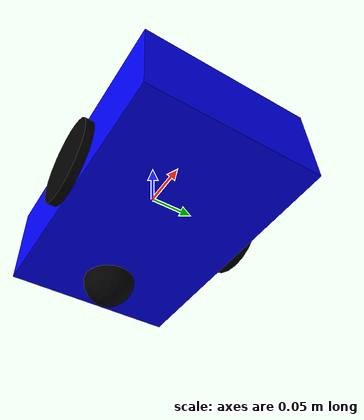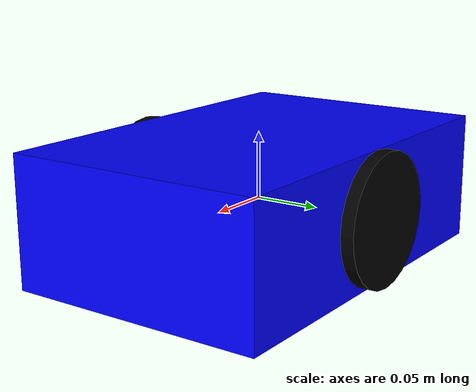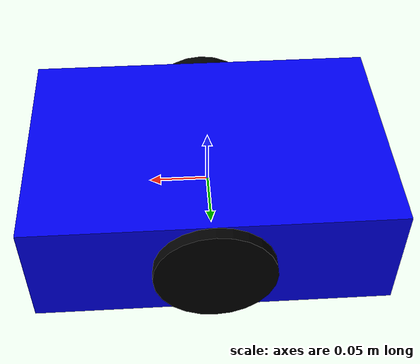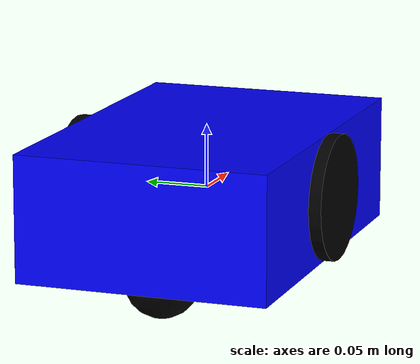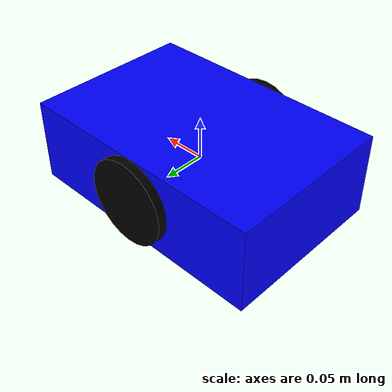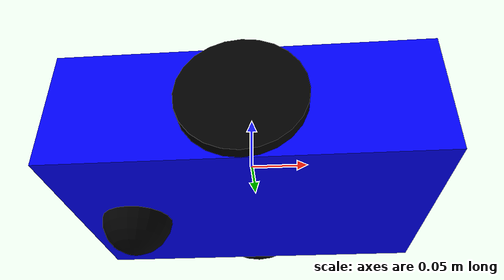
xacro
<?xml version="1.0"?>
<robot name="diff_bot" xmlns:xacro="http://www.ros.org/wiki/xacro">

  <xacro:property name="wheel_radius" value="0.05"/>
  <xacro:property name="wheel_width" value="0.02"/>
  <xacro:property name="wheel_separation" value="0.20"/>

  <link name="base_link">
    <visual>
      <geometry>
        <box size="0.30 0.20 0.10"/>
      </geometry>
			<material name="black">
  			<color rgba="0 0 1 1"/>
			</material>
    </visual>
    <collision>
      <geometry>
        <box size="0.30 0.20 0.10"/>
      </geometry>
    </collision>
    <inertial>
      <mass value="2.0"/>
      <origin xyz="0 0 0"/>
      <inertia ixx="0.02" ixy="0" ixz="0" iyy="0.02" iyz="0" izz="0.02"/>
    </inertial>
  </link>

	<link name="left_wheel">
		<visual>
			<origin xyz="0 0 0" rpy="1.5707 0 0"/>
			<geometry>
				<cylinder radius="${wheel_radius}" length="${wheel_width}"/>
			</geometry>
			<material name="black">
  			<color rgba="0 0 0 1"/>
			</material>
		</visual>
		<collision>
			<origin xyz="0 0 0" rpy="1.5707 0 0"/>
			<geometry>
				<cylinder radius="${wheel_radius}" length="${wheel_width}"/>
			</geometry>
			<material name="black">
  			<color rgba="0 0 0 1"/>
			</material>
		</collision>
		<inertial>
			<mass value="0.2"/>
			<origin xyz="0 0 0"/>
			<inertia ixx="0.0005" ixy="0" ixz="0"
							iyy="0.0005" iyz="0"
							izz="0.0005"/>
		</inertial>
	</link>

	<link name="right_wheel">
		<visual>
			<origin xyz="0 0 0" rpy="1.5707 0 0"/>
			<geometry>
				<cylinder radius="${wheel_radius}" length="${wheel_width}"/>
			</geometry>
			<material name="black">
  			<color rgba="0 0 0 1"/>
			</material>
		</visual>
		<collision>
			<origin xyz="0 0 0" rpy="1.5707 0 0"/>
			<geometry>
				<cylinder radius="${wheel_radius}" length="${wheel_width}"/>
			</geometry>
			<material name="black">
  			<color rgba="0 0 0 1"/>
			</material>
		</collision>
		<inertial>
			<mass value="0.2"/>
			<origin xyz="0 0 0"/>
			<inertia ixx="0.0005" ixy="0" ixz="0"
							iyy="0.0005" iyz="0"
							izz="0.0005"/>
		</inertial>
	</link>

  <link name="caster_wheel">
    <visual>
      <geometry>
        <sphere radius="0.03"/>
      </geometry>
			<material name="black">
  			<color rgba="0 0 0 1"/>
			</material>
    </visual>
  </link>

  <link name="imu_link"/>

  <joint name="left_wheel_joint" type="continuous">
    <parent link="base_link"/>
    <child link="left_wheel"/>
    <origin xyz="0 ${wheel_separation/2} 0" rpy="0 1.5707 0"/>
    <axis xyz="0 0 1"/>
  </joint>

  <joint name="right_wheel_joint" type="continuous">
    <parent link="base_link"/>
    <child link="right_wheel"/>
    <origin xyz="0 -${wheel_separation/2} 0" rpy="0 1.5707 0"/>
    <axis xyz="0 0 1"/>
  </joint>

  <joint name="caster_joint" type="fixed">
    <parent link="base_link"/>
    <child link="caster_wheel"/>
    <origin xyz="-0.10 0 -0.05"/>
  </joint>

  <joint name="imu_joint" type="fixed">
    <parent link="base_link"/>
    <child link="imu_link"/>
    <origin xyz="0 0 0.05" rpy = "0 0 0"/>
  </joint>

	<gazebo reference="imu_link">
		<sensor name="imu_sensor" type="imu">
			<always_on>true</always_on>
			<update_rate>100</update_rate>
			<visualize>true</visualize>

			<plugin name="imu_plugin" filename="libgazebo_ros_imu_sensor.so">
				<ros>
					<namespace>/imu</namespace>
					<remapping>~/out:=data</remapping>
				</ros>
			</plugin>
		</sensor>
	</gazebo>

  <ros2_control name="DiffBotSystem" type="system">
    <hardware>
      <plugin>gazebo_ros2_control/GazeboSystem</plugin>
    </hardware>

    <joint name="left_wheel_joint">
      <command_interface name="velocity"/>
      <state_interface name="position"/>
      <state_interface name="velocity"/>
    </joint>

    <joint name="right_wheel_joint">
      <command_interface name="velocity"/>
      <state_interface name="position"/>
      <state_interface name="velocity"/>
    </joint>
  </ros2_control>

	<gazebo>
		<plugin filename="libgazebo_ros2_control.so"
						name="gazebo_ros2_control">
			<parameters>$(find bot_controls)/config/controllers.yaml</parameters>
		</plugin>
	</gazebo>

</robot>
